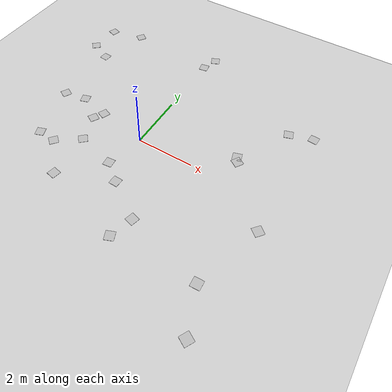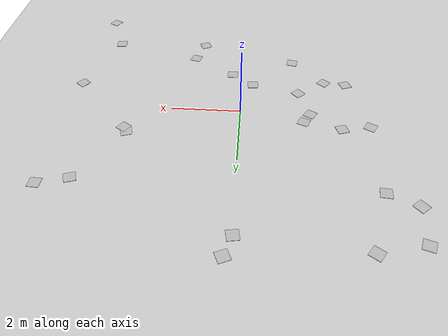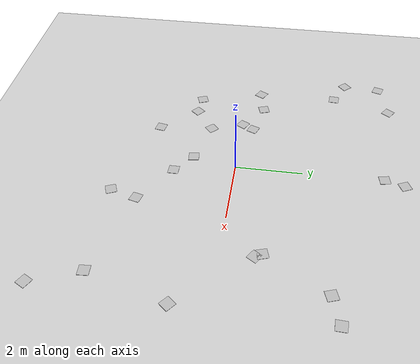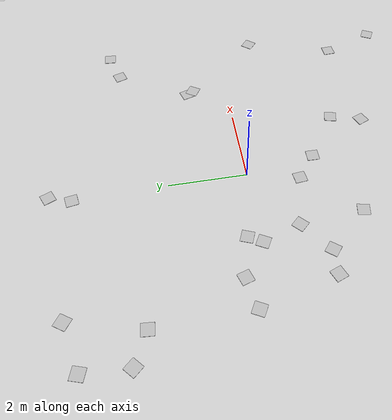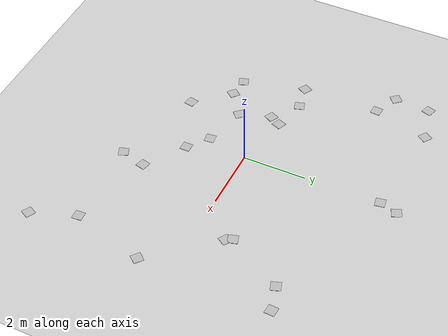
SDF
<sdf version="1.6">
 <world name="default">
  <light name="sun" type="directional">
   <pose>0 0 10 0 -0 0</pose>
   <diffuse>0.8 0.8 0.8 1</diffuse>
   <specular>0.2 0.2 0.2 1</specular>
   <attenuation>
    <range>1000</range>
    <constant>0.9</constant>
    <linear>0.01</linear>
    <quadratic>0.001</quadratic>
   </attenuation>
   <direction>-0.5 0.1 -0.9</direction>
  </light>
  <model name="ground_plane">
   <static>1</static>
   <link name="link">
    <collision name="collision">
     <geometry><plane><normal>0 0 1</normal><size>100 100</size></plane></geometry>
     <surface>
      <contact><collide_bitmask>65535</collide_bitmask></contact>
      <friction><ode><mu>100</mu><mu2>50</mu2></ode></friction>
     </surface>
    </collision>
    <visual name="visual">
     <cast_shadows>0</cast_shadows>
     <geometry><plane><normal>0 0 1</normal><size>100 100</size></plane></geometry>
     <material>
      <script><uri>file://media/materials/scripts/gazebo.material</uri><name>Gazebo/Grey</name></script>
     </material>
    </visual>
   </link>
  </model>
  <gravity>0 0 -9.8</gravity>
  <magnetic_field>6e-06 2.3e-05 -4.2e-05</magnetic_field>
  <atmosphere type="adiabatic"/>
  <physics name="default_physics" default="0" type="ode">
   <max_step_size>0.001</max_step_size>
   <real_time_factor>1</real_time_factor>
   <real_time_update_rate>1000</real_time_update_rate>
  </physics>
  <scene><ambient>0.4 0.4 0.4 1</ambient><background>0.7 0.7 0.7 1</background><shadows>1</shadows></scene>
  <audio><device>default</device></audio>
  <spherical_coordinates>
   <surface_model>EARTH_WGS84</surface_model>
   <latitude_deg>0</latitude_deg>
   <longitude_deg>0</longitude_deg>
   <elevation>0</elevation>
   <heading_deg>0</heading_deg>
  </spherical_coordinates>
  <model name="ar_diamond_0">
   <static>1</static>
   <pose>1.3468501672389213 -3.4336992014177694 0.005 0 -0 1.9669964641419382</pose>
   <plugin name="model_location" filename="libmodel_location.so"/>
   <link name="link">
    <collision name="collision"><geometry><box><size>0.3125 0.3125 0.01</size></box></geometry></collision>
    <visual name="visual">
     <cast_shadows>0</cast_shadows>
     <geometry><box><size>0.3125 0.3125 0.01</size></box></geometry>
     <material>
      <script>
       <uri>model://aruco_diamond1234/materials/scripts</uri>
       <uri>model://aruco_diamond1234/materials/textures</uri>
       <name>ar/diamond0</name>
      </script>
     </material>
    </visual>
   </link>
  </model>
  <model name="ar_diamond_4">
   <static>1</static>
   <pose>-1.6766547613602958 -0.9673560302015884 0.005 0 -0 5.464437784081811</pose>
   <plugin name="model_location" filename="libmodel_location.so"/>
   <link name="link">
    <collision name="collision"><geometry><box><size>0.3125 0.3125 0.01</size></box></geometry></collision>
    <visual name="visual">
     <cast_shadows>0</cast_shadows>
     <geometry><box><size>0.3125 0.3125 0.01</size></box></geometry>
     <material>
      <script>
       <uri>model://aruco_diamond1234/materials/scripts</uri>
       <uri>model://aruco_diamond1234/materials/textures</uri>
       <name>ar/diamond4</name>
      </script>
     </material>
    </visual>
   </link>
  </model>
  <model name="ar_diamond_8">
   <static>1</static>
   <pose>4.948106934696172 3.1484006248614858 0.005 0 -0 1.5179545625100848</pose>
   <plugin name="model_location" filename="libmodel_location.so"/>
   <link name="link">
    <collision name="collision"><geometry><box><size>0.3125 0.3125 0.01</size></box></geometry></collision>
    <visual name="visual">
     <cast_shadows>0</cast_shadows>
     <geometry><box><size>0.3125 0.3125 0.01</size></box></geometry>
     <material>
      <script>
       <uri>model://aruco_diamond1234/materials/scripts</uri>
       <uri>model://aruco_diamond1234/materials/textures</uri>
       <name>ar/diamond8</name>
      </script>
     </material>
    </visual>
   </link>
  </model>
  <model name="ar_diamond_12">
   <static>1</static>
   <pose>0.3305801614510395 -1.8033106780806718 0.005 0 -0 3.1259020360577137</pose>
   <plugin name="model_location" filename="libmodel_location.so"/>
   <link name="link">
    <collision name="collision"><geometry><box><size>0.3125 0.3125 0.01</size></box></geometry></collision>
    <visual name="visual">
     <cast_shadows>0</cast_shadows>
     <geometry><box><size>0.3125 0.3125 0.01</size></box></geometry>
     <material>
      <script>
       <uri>model://aruco_diamond1234/materials/scripts</uri>
       <uri>model://aruco_diamond1234/materials/textures</uri>
       <name>ar/diamond12</name>
      </script>
     </material>
    </visual>
   </link>
  </model>
  <model name="ar_diamond_16">
   <static>1</static>
   <pose>-0.31085908979387433 -1.3079833964713172 0.005 0 -0 0.1047624805899468</pose>
   <plugin name="model_location" filename="libmodel_location.so"/>
   <link name="link">
    <collision name="collision"><geometry><box><size>0.3125 0.3125 0.01</size></box></geometry></collision>
    <visual name="visual">
     <cast_shadows>0</cast_shadows>
     <geometry><box><size>0.3125 0.3125 0.01</size></box></geometry>
     <material>
      <script>
       <uri>model://aruco_diamond1234/materials/scripts</uri>
       <uri>model://aruco_diamond1234/materials/textures</uri>
       <name>ar/diamond16</name>
      </script>
     </material>
    </visual>
   </link>
  </model>
  <model name="ar_diamond_20">
   <static>1</static>
   <pose>3.205187058208539 0.9152628460158487 0.005 0 -0 1.0051980915950731</pose>
   <plugin name="model_location" filename="libmodel_location.so"/>
   <link name="link">
    <collision name="collision"><geometry><box><size>0.3125 0.3125 0.01</size></box></geometry></collision>
    <visual name="visual">
     <cast_shadows>0</cast_shadows>
     <geometry><box><size>0.3125 0.3125 0.01</size></box></geometry>
     <material>
      <script>
       <uri>model://aruco_diamond1234/materials/scripts</uri>
       <uri>model://aruco_diamond1234/materials/textures</uri>
       <name>ar/diamond20</name>
      </script>
     </material>
    </visual>
   </link>
  </model>
  <model name="ar_diamond_24">
   <static>1</static>
   <pose>-2.475180197687549 -1.5503802481832905 0.005 0 -0 4.023945216065765</pose>
   <plugin name="model_location" filename="libmodel_location.so"/>
   <link name="link">
    <collision name="collision"><geometry><box><size>0.3125 0.3125 0.01</size></box></geometry></collision>
    <visual name="visual">
     <cast_shadows>0</cast_shadows>
     <geometry><box><size>0.3125 0.3125 0.01</size></box></geometry>
     <material>
      <script>
       <uri>model://aruco_diamond1234/materials/scripts</uri>
       <uri>model://aruco_diamond1234/materials/textures</uri>
       <name>ar/diamond24</name>
      </script>
     </material>
    </visual>
   </link>
  </model>
  <model name="ar_diamond_28">
   <static>1</static>
   <pose>4.721502042637912 -4.716364841396251 0.005 0 -0 2.646178504456357</pose>
   <plugin name="model_location" filename="libmodel_location.so"/>
   <link name="link">
    <collision name="collision"><geometry><box><size>0.3125 0.3125 0.01</size></box></geometry></collision>
    <visual name="visual">
     <cast_shadows>0</cast_shadows>
     <geometry><box><size>0.3125 0.3125 0.01</size></box></geometry>
     <material>
      <script>
       <uri>model://aruco_diamond1234/materials/scripts</uri>
       <uri>model://aruco_diamond1234/materials/textures</uri>
       <name>ar/diamond28</name>
      </script>
     </material>
    </visual>
   </link>
  </model>
  <model name="ar_diamond_32">
   <static>1</static>
   <pose>-3.203577216441038 4.652700269356751 0.005 0 -0 4.108947974891464</pose>
   <plugin name="model_location" filename="libmodel_location.so"/>
   <link name="link">
    <collision name="collision"><geometry><box><size>0.3125 0.3125 0.01</size></box></geometry></collision>
    <visual name="visual">
     <cast_shadows>0</cast_shadows>
     <geometry><box><size>0.3125 0.3125 0.01</size></box></geometry>
     <material>
      <script>
       <uri>model://aruco_diamond1234/materials/scripts</uri>
       <uri>model://aruco_diamond1234/materials/textures</uri>
       <name>ar/diamond32</name>
      </script>
     </material>
    </visual>
   </link>
  </model>
  <model name="ar_diamond_36">
   <static>1</static>
   <pose>-3.679144884691501 2.877106129911989 0.005 0 -0 4.631946816163287</pose>
   <plugin name="model_location" filename="libmodel_location.so"/>
   <link name="link">
    <collision name="collision"><geometry><box><size>0.3125 0.3125 0.01</size></box></geometry></collision>
    <visual name="visual">
     <cast_shadows>0</cast_shadows>
     <geometry><box><size>0.3125 0.3125 0.01</size></box></geometry>
     <material>
      <script>
       <uri>model://aruco_diamond1234/materials/scripts</uri>
       <uri>model://aruco_diamond1234/materials/textures</uri>
       <name>ar/diamond36</name>
      </script>
     </material>
    </visual>
   </link>
  </model>
  <model name="ar_diamond_40">
   <static>1</static>
   <pose>-3.1182612430321974 -1.4925706976262196 0.005 0 -0 1.9325071245113548</pose>
   <plugin name="model_location" filename="libmodel_location.so"/>
   <link name="link">
    <collision name="collision"><geometry><box><size>0.3125 0.3125 0.01</size></box></geometry></collision>
    <visual name="visual">
     <cast_shadows>0</cast_shadows>
     <geometry><box><size>0.3125 0.3125 0.01</size></box></geometry>
     <material>
      <script>
       <uri>model://aruco_diamond1234/materials/scripts</uri>
       <uri>model://aruco_diamond1234/materials/textures</uri>
       <name>ar/diamond40</name>
      </script>
     </material>
    </visual>
   </link>
  </model>
  <model name="ar_diamond_44">
   <static>1</static>
   <pose>-1.7981231538664098 0.34634929962117056 0.005 0 -0 5.896757860841978</pose>
   <plugin name="model_location" filename="libmodel_location.so"/>
   <link name="link">
    <collision name="collision"><geometry><box><size>0.3125 0.3125 0.01</size></box></geometry></collision>
    <visual name="visual">
     <cast_shadows>0</cast_shadows>
     <geometry><box><size>0.3125 0.3125 0.01</size></box></geometry>
     <material>
      <script>
       <uri>model://aruco_diamond1234/materials/scripts</uri>
       <uri>model://aruco_diamond1234/materials/textures</uri>
       <name>ar/diamond44</name>
      </script>
     </material>
    </visual>
   </link>
  </model>
  <model name="ar_diamond_48">
   <static>1</static>
   <pose>-4.447082450702936 3.2404548154550703 0.005 0 -0 2.2996772454054892</pose>
   <plugin name="model_location" filename="libmodel_location.so"/>
   <link name="link">
    <collision name="collision"><geometry><box><size>0.3125 0.3125 0.01</size></box></geometry></collision>
    <visual name="visual">
     <cast_shadows>0</cast_shadows>
     <geometry><box><size>0.3125 0.3125 0.01</size></box></geometry>
     <material>
      <script>
       <uri>model://aruco_diamond1234/materials/scripts</uri>
       <uri>model://aruco_diamond1234/materials/textures</uri>
       <name>ar/diamond48</name>
      </script>
     </material>
    </visual>
   </link>
  </model>
  <model name="ar_diamond_52">
   <static>1</static>
   <pose>-1.5355103431045847 -2.58504802864394 0.005 0 -0 6.101952424601239</pose>
   <plugin name="model_location" filename="libmodel_location.so"/>
   <link name="link">
    <collision name="collision"><geometry><box><size>0.3125 0.3125 0.01</size></box></geometry></collision>
    <visual name="visual">
     <cast_shadows>0</cast_shadows>
     <geometry><box><size>0.3125 0.3125 0.01</size></box></geometry>
     <material>
      <script>
       <uri>model://aruco_diamond1234/materials/scripts</uri>
       <uri>model://aruco_diamond1234/materials/textures</uri>
       <name>ar/diamond52</name>
      </script>
     </material>
    </visual>
   </link>
  </model>
  <model name="ar_diamond_56">
   <static>1</static>
   <pose>4.134854285891871 2.9116797988430507 0.005 0 -0 3.4649578620486388</pose>
   <plugin name="model_location" filename="libmodel_location.so"/>
   <link name="link">
    <collision name="collision"><geometry><box><size>0.3125 0.3125 0.01</size></box></geometry></collision>
    <visual name="visual">
     <cast_shadows>0</cast_shadows>
     <geometry><box><size>0.3125 0.3125 0.01</size></box></geometry>
     <material>
      <script>
       <uri>model://aruco_diamond1234/materials/scripts</uri>
       <uri>model://aruco_diamond1234/materials/textures</uri>
       <name>ar/diamond56</name>
      </script>
     </material>
    </visual>
   </link>
  </model>
  <model name="ar_diamond_60">
   <static>1</static>
   <pose>-2.8401822152797784 0.5915863608899397 0.005 0 -0 3.448918063520319</pose>
   <plugin name="model_location" filename="libmodel_location.so"/>
   <link name="link">
    <collision name="collision"><geometry><box><size>0.3125 0.3125 0.01</size></box></geometry></collision>
    <visual name="visual">
     <cast_shadows>0</cast_shadows>
     <geometry><box><size>0.3125 0.3125 0.01</size></box></geometry>
     <material>
      <script>
       <uri>model://aruco_diamond1234/materials/scripts</uri>
       <uri>model://aruco_diamond1234/materials/textures</uri>
       <name>ar/diamond60</name>
      </script>
     </material>
    </visual>
   </link>
  </model>
  <model name="ar_diamond_64">
   <static>1</static>
   <pose>-0.041185205214262055 4.390406309402852 0.005 0 -0 3.3112252856770583</pose>
   <plugin name="model_location" filename="libmodel_location.so"/>
   <link name="link">
    <collision name="collision"><geometry><box><size>0.3125 0.3125 0.01</size></box></geometry></collision>
    <visual name="visual">
     <cast_shadows>0</cast_shadows>
     <geometry><box><size>0.3125 0.3125 0.01</size></box></geometry>
     <material>
      <script>
       <uri>model://aruco_diamond1234/materials/scripts</uri>
       <uri>model://aruco_diamond1234/materials/textures</uri>
       <name>ar/diamond64</name>
      </script>
     </material>
    </visual>
   </link>
  </model>
  <model name="ar_diamond_68">
   <static>1</static>
   <pose>0.13989940241559573 4.961472346476347 0.005 0 -0 0.4185815313503492</pose>
   <plugin name="model_location" filename="libmodel_location.so"/>
   <link name="link">
    <collision name="collision"><geometry><box><size>0.3125 0.3125 0.01</size></box></geometry></collision>
    <visual name="visual">
     <cast_shadows>0</cast_shadows>
     <geometry><box><size>0.3125 0.3125 0.01</size></box></geometry>
     <material>
      <script>
       <uri>model://aruco_diamond1234/materials/scripts</uri>
       <uri>model://aruco_diamond1234/materials/textures</uri>
       <name>ar/diamond68</name>
      </script>
     </material>
    </visual>
   </link>
  </model>
  <model name="ar_diamond_72">
   <static>1</static>
   <pose>-1.9944093869127801 -0.0020314707441926316 0.005 0 -0 1.06229549355772</pose>
   <plugin name="model_location" filename="libmodel_location.so"/>
   <link name="link">
    <collision name="collision"><geometry><box><size>0.3125 0.3125 0.01</size></box></geometry></collision>
    <visual name="visual">
     <cast_shadows>0</cast_shadows>
     <geometry><box><size>0.3125 0.3125 0.01</size></box></geometry>
     <material>
      <script>
       <uri>model://aruco_diamond1234/materials/scripts</uri>
       <uri>model://aruco_diamond1234/materials/textures</uri>
       <name>ar/diamond72</name>
      </script>
     </material>
    </visual>
   </link>
  </model>
  <model name="ar_diamond_76">
   <static>1</static>
   <pose>4.890624667412048 -1.0297226985938912 0.005 0 -0 4.024436937736044</pose>
   <plugin name="model_location" filename="libmodel_location.so"/>
   <link name="link">
    <collision name="collision"><geometry><box><size>0.3125 0.3125 0.01</size></box></geometry></collision>
    <visual name="visual">
     <cast_shadows>0</cast_shadows>
     <geometry><box><size>0.3125 0.3125 0.01</size></box></geometry>
     <material>
      <script>
       <uri>model://aruco_diamond1234/materials/scripts</uri>
       <uri>model://aruco_diamond1234/materials/textures</uri>
       <name>ar/diamond76</name>
      </script>
     </material>
    </visual>
   </link>
  </model>
  <model name="ar_diamond_80">
   <static>1</static>
   <pose>4.202244496907653 -3.33527635829328 0.005 0 -0 0.054819803825498344</pose>
   <plugin name="model_location" filename="libmodel_location.so"/>
   <link name="link">
    <collision name="collision"><geometry><box><size>0.3125 0.3125 0.01</size></box></geometry></collision>
    <visual name="visual">
     <cast_shadows>0</cast_shadows>
     <geometry><box><size>0.3125 0.3125 0.01</size></box></geometry>
     <material>
      <script>
       <uri>model://aruco_diamond1234/materials/scripts</uri>
       <uri>model://aruco_diamond1234/materials/textures</uri>
       <name>ar/diamond80</name>
      </script>
     </material>
    </visual>
   </link>
  </model>
  <model name="ar_diamond_84">
   <static>1</static>
   <pose>3.0983577883206728 1.1024678718071126 0.005 0 -0 0.3020675641212306</pose>
   <plugin name="model_location" filename="libmodel_location.so"/>
   <link name="link">
    <collision name="collision"><geometry><box><size>0.3125 0.3125 0.01</size></box></geometry></collision>
    <visual name="visual">
     <cast_shadows>0</cast_shadows>
     <geometry><box><size>0.3125 0.3125 0.01</size></box></geometry>
     <material>
      <script>
       <uri>model://aruco_diamond1234/materials/scripts</uri>
       <uri>model://aruco_diamond1234/materials/textures</uri>
       <name>ar/diamond84</name>
      </script>
     </material>
    </visual>
   </link>
  </model>
  <model name="ar_diamond_88">
   <static>1</static>
   <pose>-4.378138106804813 4.361489901122363 0.005 0 -0 2.823614644704497</pose>
   <plugin name="model_location" filename="libmodel_location.so"/>
   <link name="link">
    <collision name="collision"><geometry><box><size>0.3125 0.3125 0.01</size></box></geometry></collision>
    <visual name="visual">
     <cast_shadows>0</cast_shadows>
     <geometry><box><size>0.3125 0.3125 0.01</size></box></geometry>
     <material>
      <script>
       <uri>model://aruco_diamond1234/materials/scripts</uri>
       <uri>model://aruco_diamond1234/materials/textures</uri>
       <name>ar/diamond88</name>
      </script>
     </material>
    </visual>
   </link>
  </model>
  <model name="ar_diamond_92">
   <static>1</static>
   <pose>1.5729671831838923 -2.640111331375672 0.005 0 -0 6.031877307839594</pose>
   <plugin name="model_location" filename="libmodel_location.so"/>
   <link name="link">
    <collision name="collision"><geometry><box><size>0.3125 0.3125 0.01</size></box></geometry></collision>
    <visual name="visual">
     <cast_shadows>0</cast_shadows>
     <geometry><box><size>0.3125 0.3125 0.01</size></box></geometry>
     <material>
      <script>
       <uri>model://aruco_diamond1234/materials/scripts</uri>
       <uri>model://aruco_diamond1234/materials/textures</uri>
       <name>ar/diamond92</name>
      </script>
     </material>
    </visual>
   </link>
  </model>
  <model name="ar_diamond_96">
   <static>1</static>
   <pose>-3.638921365143286 0.44300394970700285 0.005 0 -0 4.208892455921714</pose>
   <plugin name="model_location" filename="libmodel_location.so"/>
   <link name="link">
    <collision name="collision"><geometry><box><size>0.3125 0.3125 0.01</size></box></geometry></collision>
    <visual name="visual">
     <cast_shadows>0</cast_shadows>
     <geometry><box><size>0.3125 0.3125 0.01</size></box></geometry>
     <material>
      <script>
       <uri>model://aruco_diamond1234/materials/scripts</uri>
       <uri>model://aruco_diamond1234/materials/textures</uri>
       <name>ar/diamond96</name>
      </script>
     </material>
    </visual>
   </link>
  </model>
 </world>
</sdf>
